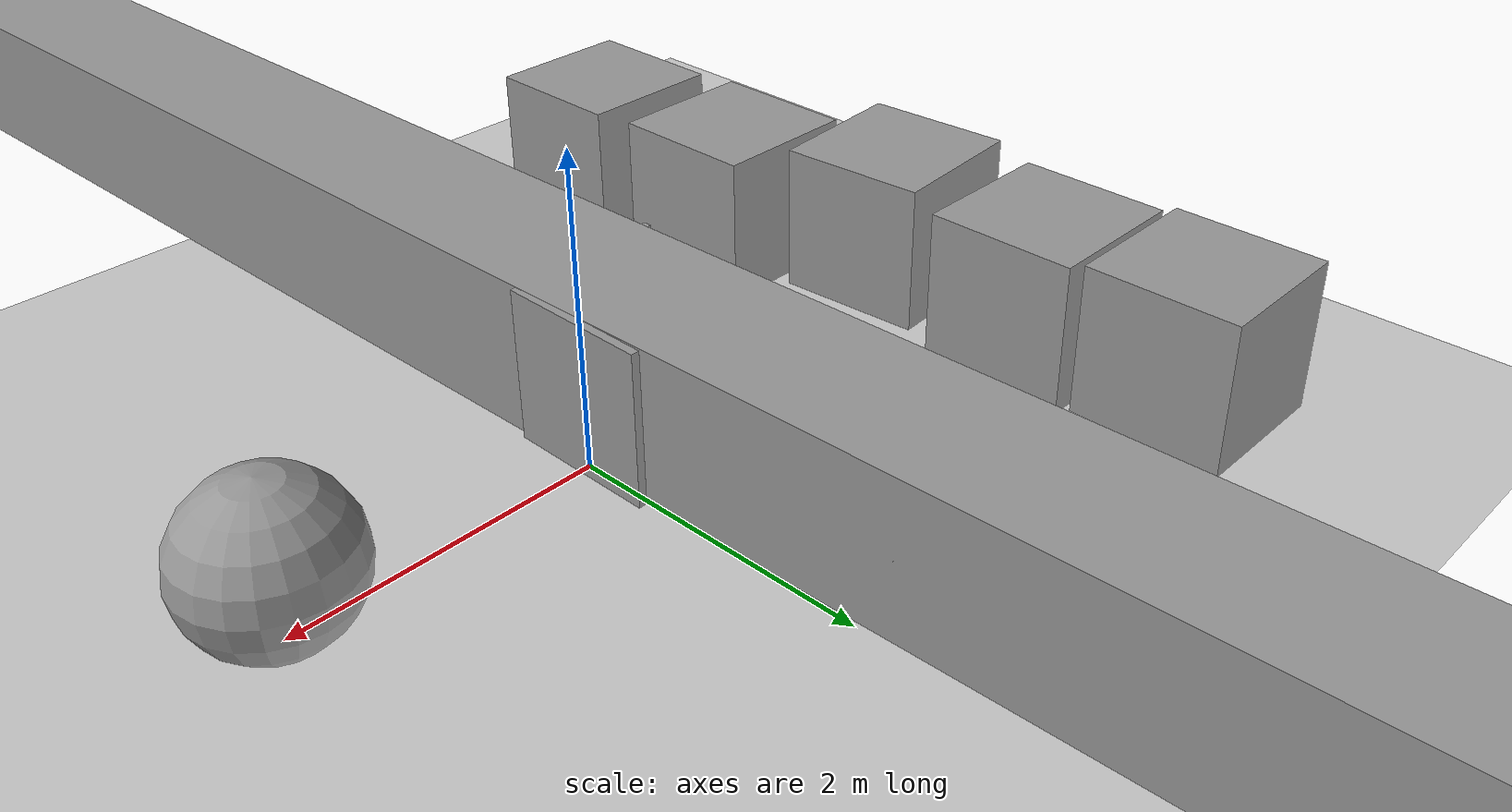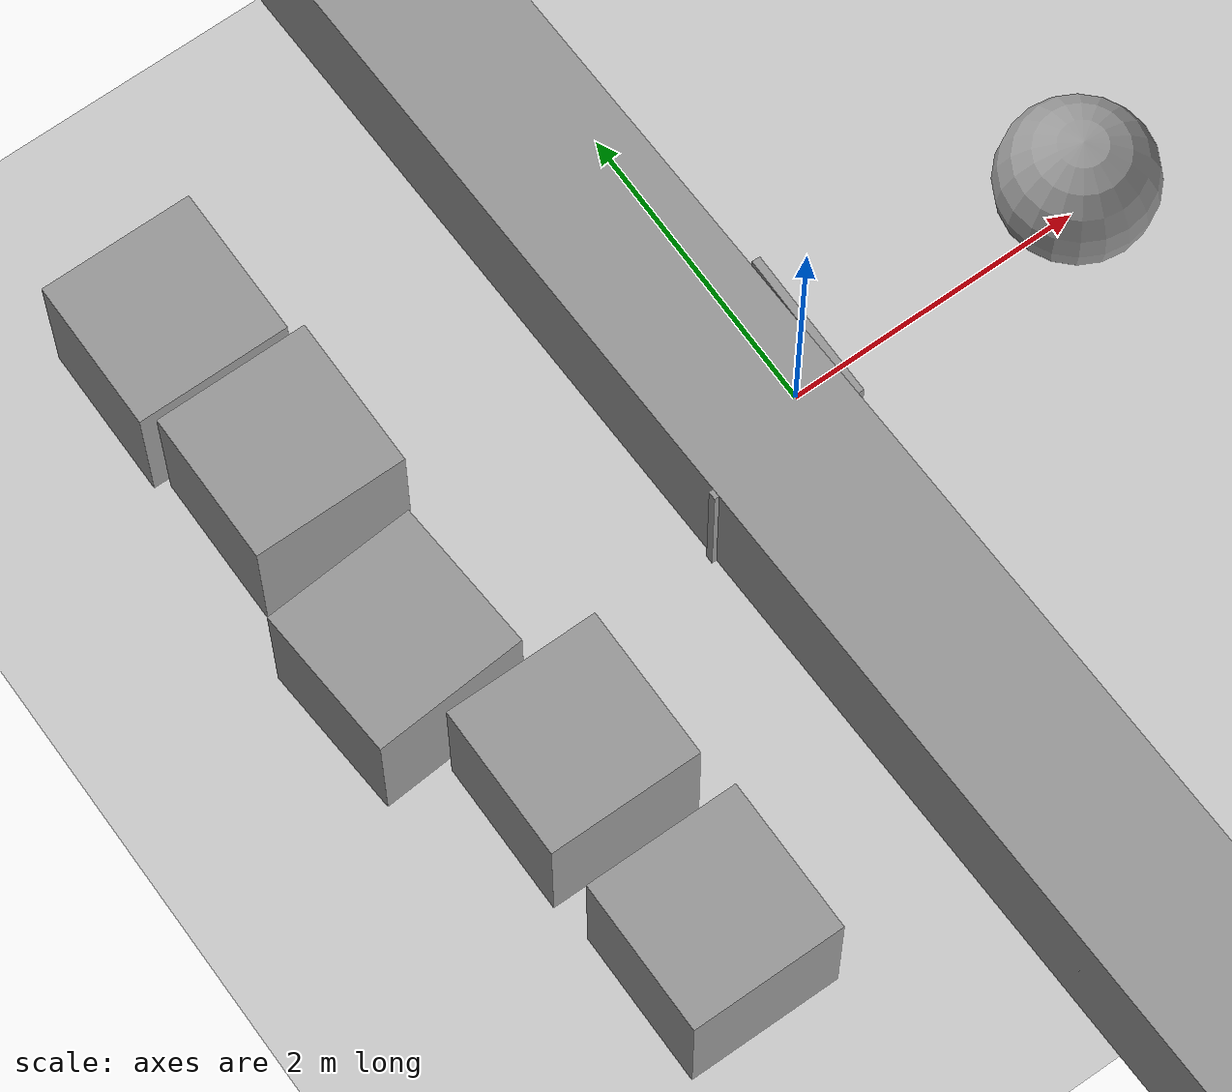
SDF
<sdf version="1.6">
 <world name="default">
  <scene><ambient>0.4 0.4 0.4 1</ambient><background>0.7 0.7 0.7 1</background><shadows>1</shadows></scene>
  <light name="sun" type="directional">
   <pose>0 0 10 0 -0 0</pose>
   <diffuse>0.8 0.8 0.8 1</diffuse>
   <specular>0.2 0.2 0.2 1</specular>
   <attenuation>
    <range>1000</range>
    <constant>0.9</constant>
    <linear>0.01</linear>
    <quadratic>0.001</quadratic>
   </attenuation>
   <direction>-0.5 0.1 -0.9</direction>
  </light>
  <model name="ground_plane">
   <static>1</static>
   <link name="link">
    <collision name="collision">
     <geometry><plane><normal>0 0 1</normal><size>100 100</size></plane></geometry>
     <surface>
      <contact><collide_bitmask>65535</collide_bitmask></contact>
      <friction><ode><mu>100</mu><mu2>50</mu2></ode></friction>
     </surface>
    </collision>
    <visual name="visual">
     <cast_shadows>0</cast_shadows>
     <geometry><plane><normal>0 0 1</normal><size>100 100</size></plane></geometry>
     <material>
      <script><uri>file://media/materials/scripts/gazebo.material</uri><name>Gazebo/Grey</name></script>
     </material>
    </visual>
   </link>
  </model>
  <physics name="default_physics" default="0" type="ode">
   <real_time_update_rate>1000</real_time_update_rate>
   <max_step_size>0.001</max_step_size>
   <real_time_factor>1</real_time_factor>
   <ode>
    <solver>
     <type>quick</type>
     <iters>150</iters>
     <precon_iters>0</precon_iters>
     <sor>1.4</sor>
     <use_dynamic_moi_rescaling>1</use_dynamic_moi_rescaling>
    </solver>
    <constraints>
     <cfm>1e-05</cfm>
     <erp>0.2</erp>
     <contact_max_correcting_vel>2000</contact_max_correcting_vel>
     <contact_surface_layer>0.01</contact_surface_layer>
    </constraints>
   </ode>
  </physics>
  <gravity>0 0 -9.8</gravity>
  <magnetic_field>6e-06 2.3e-05 -4.2e-05</magnetic_field>
  <atmosphere type="adiabatic"/>
  <audio><device>default</device></audio>
  <spherical_coordinates>
   <surface_model>EARTH_WGS84</surface_model>
   <latitude_deg>0</latitude_deg>
   <longitude_deg>0</longitude_deg>
   <elevation>0</elevation>
   <heading_deg>0</heading_deg>
  </spherical_coordinates>
  <model name="unit_sphere">
   <pose>2 0 0.499999 0 -0 0</pose>
   <link name="link">
    <inertial>
     <mass>1</mass>
     <inertia><ixx>0.1</ixx><ixy>0</ixy><ixz>0</ixz><iyy>0.1</iyy><iyz>0</iyz><izz>0.1</izz></inertia>
    </inertial>
    <collision name="collision"><geometry><sphere><radius>0.5</radius></sphere></geometry></collision>
    <visual name="visual">
     <geometry><sphere><radius>0.5</radius></sphere></geometry>
     <material>
      <script><name>Gazebo/Grey</name><uri>file://media/materials/scripts/gazebo.material</uri></script>
     </material>
    </visual>
   </link>
  </model>
  <model name="unit_box">
   <pose>-0.497172 0.521667 0.500054 -0.002033 -0 0.027017</pose>
   <link name="link">
    <inertial>
     <mass>1</mass>
     <inertia>
      <ixx>0.166667</ixx>
      <ixy>0</ixy>
      <ixz>0</ixz>
      <iyy>0.166667</iyy>
      <iyz>0</iyz>
      <izz>0.166667</izz>
     </inertia>
    </inertial>
    <collision name="collision"><geometry><box><size>1 341.166 1</size></box></geometry></collision>
    <visual name="visual">
     <geometry><box><size>1 341.166 1</size></box></geometry>
     <material>
      <script><name>Gazebo/Grey</name><uri>file://media/materials/scripts/gazebo.material</uri></script>
     </material>
    </visual>
   </link>
  </model>
  <model name="unit_box_clone">
   <pose>-0.499827 -0.527197 0.5 -2e-06 -0 -0.004187</pose>
   <link name="link">
    <inertial>
     <mass>1</mass>
     <inertia>
      <ixx>0.166667</ixx>
      <ixy>0</ixy>
      <ixz>0</ixz>
      <iyy>0.166667</iyy>
      <iyz>0</iyz>
      <izz>0.166667</izz>
     </inertia>
    </inertial>
    <collision name="collision"><geometry><box><size>1 0.05414 1</size></box></geometry></collision>
    <visual name="visual">
     <geometry><box><size>1 0.05414 1</size></box></geometry>
     <material>
      <script><name>Gazebo/Grey</name><uri>file://media/materials/scripts/gazebo.material</uri></script>
     </material>
    </visual>
   </link>
  </model>
  <model name="unit_box_clone_0">
   <pose>0.044274 -0.001993 0.5 -1e-06 0 -1.57409</pose>
   <link name="link">
    <inertial>
     <mass>1</mass>
     <inertia>
      <ixx>0.166667</ixx>
      <ixy>0</ixy>
      <ixz>0</ixz>
      <iyy>0.166667</iyy>
      <iyz>0</iyz>
      <izz>0.166667</izz>
     </inertia>
    </inertial>
    <collision name="collision"><geometry><box><size>1 0.05414 1</size></box></geometry></collision>
    <visual name="visual">
     <geometry><box><size>1 0.05414 1</size></box></geometry>
     <material>
      <script><name>Gazebo/Grey</name><uri>file://media/materials/scripts/gazebo.material</uri></script>
     </material>
    </visual>
   </link>
  </model>
  <model name="unit_box_0">
   <pose>-2.84939 2.19018 0.5 0 -0 0</pose>
   <link name="link">
    <inertial>
     <mass>1</mass>
     <inertia>
      <ixx>0.166667</ixx>
      <ixy>0</ixy>
      <ixz>0</ixz>
      <iyy>0.166667</iyy>
      <iyz>0</iyz>
      <izz>0.166667</izz>
     </inertia>
    </inertial>
    <collision name="collision"><geometry><box><size>1 1 1</size></box></geometry></collision>
    <visual name="visual">
     <geometry><box><size>1 1 1</size></box></geometry>
     <material>
      <script><name>Gazebo/Grey</name><uri>file://media/materials/scripts/gazebo.material</uri></script>
     </material>
    </visual>
   </link>
  </model>
  <model name="unit_box_1">
   <pose>-2.76403 1.1469 0.5 0 -0 0</pose>
   <link name="link">
    <inertial>
     <mass>1</mass>
     <inertia>
      <ixx>0.166667</ixx>
      <ixy>0</ixy>
      <ixz>0</ixz>
      <iyy>0.166667</iyy>
      <iyz>0</iyz>
      <izz>0.166667</izz>
     </inertia>
    </inertial>
    <collision name="collision"><geometry><box><size>1 1 1</size></box></geometry></collision>
    <visual name="visual">
     <geometry><box><size>1 1 1</size></box></geometry>
     <material>
      <script><name>Gazebo/Grey</name><uri>file://media/materials/scripts/gazebo.material</uri></script>
     </material>
    </visual>
   </link>
  </model>
  <model name="unit_box_2">
   <pose>-2.88418 -0.148496 0.5 0 -0 0.071886</pose>
   <link name="link">
    <inertial>
     <mass>1</mass>
     <inertia>
      <ixx>0.166667</ixx>
      <ixy>0</ixy>
      <ixz>0</ixz>
      <iyy>0.166667</iyy>
      <iyz>0</iyz>
      <izz>0.166667</izz>
     </inertia>
    </inertial>
    <collision name="collision"><geometry><box><size>1 1 1</size></box></geometry></collision>
    <visual name="visual">
     <geometry><box><size>1 1 1</size></box></geometry>
     <material>
      <script><name>Gazebo/Grey</name><uri>file://media/materials/scripts/gazebo.material</uri></script>
     </material>
    </visual>
   </link>
  </model>
  <model name="unit_box_3">
   <pose>-2.42911 -1.2124 0.5 0 -0 0</pose>
   <link name="link">
    <inertial>
     <mass>1</mass>
     <inertia>
      <ixx>0.166667</ixx>
      <ixy>0</ixy>
      <ixz>0</ixz>
      <iyy>0.166667</iyy>
      <iyz>0</iyz>
      <izz>0.166667</izz>
     </inertia>
    </inertial>
    <collision name="collision"><geometry><box><size>1 1 1</size></box></geometry></collision>
    <visual name="visual">
     <geometry><box><size>1 1 1</size></box></geometry>
     <material>
      <script><name>Gazebo/Grey</name><uri>file://media/materials/scripts/gazebo.material</uri></script>
     </material>
    </visual>
   </link>
  </model>
  <model name="unit_box_4">
   <pose>-2.37785 -2.46664 0.5 0 -0 0</pose>
   <link name="link">
    <inertial>
     <mass>1</mass>
     <inertia>
      <ixx>0.166667</ixx>
      <ixy>0</ixy>
      <ixz>0</ixz>
      <iyy>0.166667</iyy>
      <iyz>0</iyz>
      <izz>0.166667</izz>
     </inertia>
    </inertial>
    <collision name="collision"><geometry><box><size>1 1 1</size></box></geometry></collision>
    <visual name="visual">
     <geometry><box><size>1 1 1</size></box></geometry>
     <material>
      <script><name>Gazebo/Grey</name><uri>file://media/materials/scripts/gazebo.material</uri></script>
     </material>
    </visual>
   </link>
  </model>
 </world>
</sdf>
